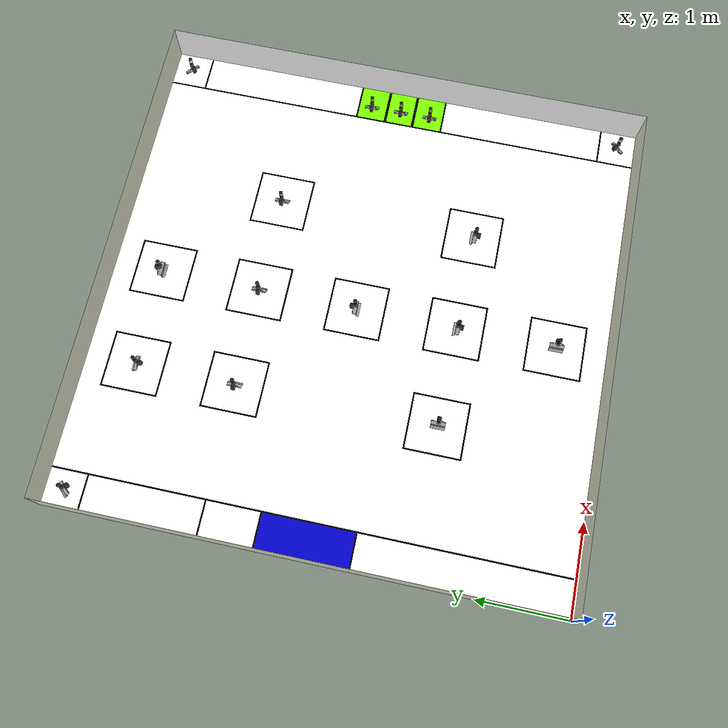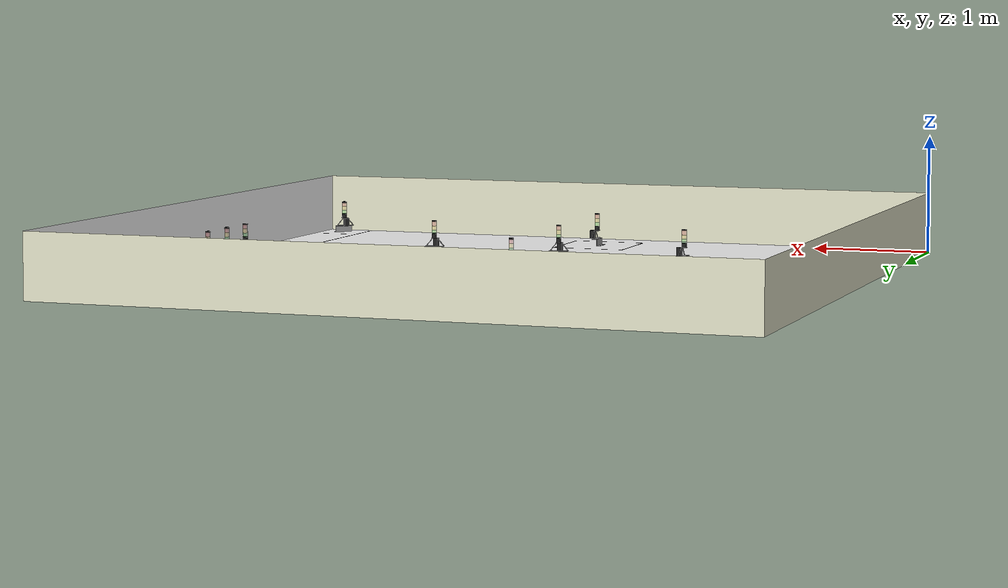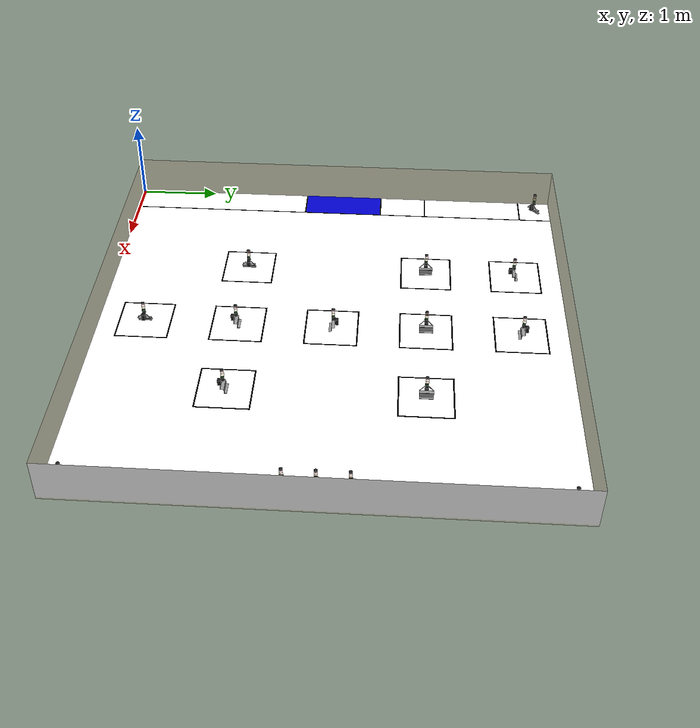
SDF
<?xml version="1.0" ?>
<sdf version="1.4">
  <model name="llsf_field">
    <static>true</static>
    <link name="field_link">
      <visual name='visual'>
	<pose>5.6 0 0 0 0 1.57</pose>
	<geometry>
	  <mesh>
	    <uri>model://llsf_field/RobotinoFeld_leer.dae</uri>
	    <scale>1.0 1.0 1.0</scale>
	  </mesh>
	</geometry>
	<cast_shadows>false</cast_shadows>
      </visual>
      <collision name="collision_ground">
	<pose>2.8 2.8 0.01 0 0 0 </pose>
        <geometry>
          <box>
            <size>5.6 5.6 0.02</size>
          </box>
        </geometry>
        <surface>
          <friction>
            <ode>
              <mu>100</mu>
              <mu2>50</mu2>
            </ode>
          </friction>
        </surface>
      </collision>
      <collision name="collision0">
        <pose>2.8 0 0.25 0 0 0 </pose>
	<geometry>
          <box>
            <size>5.6 0.02 0.5</size>
          </box>
        </geometry>
        <surface>
          <friction>
            <ode>
              <mu>100</mu>
              <mu2>50</mu2>
            </ode>
          </friction>
        </surface>
      </collision>
      <collision name="collision1">
        <pose>0 2.8 0.25 0 0 0 </pose>
	<geometry>
          <box>
            <size>0.02 5.6 0.5</size>
          </box>
        </geometry>
        <surface>
          <friction>
            <ode>
              <mu>100</mu>
              <mu2>50</mu2>
            </ode>
          </friction>
        </surface>
      </collision>
      <collision name="collision2">
        <pose>5.6 2.8 0.25 0 0 0 </pose>
	<geometry>
          <box>
            <size>0.02 5.6 0.5</size>
          </box>
        </geometry>
        <surface>
          <friction>
            <ode>
              <mu>100</mu>
              <mu2>50</mu2>
            </ode>
          </friction>
        </surface>
      </collision>
      <collision name="collision3">
        <pose>2.8 5.6 0.25 0 0 0 </pose>
	<geometry>
          <box>
            <size>5.6 0.02 0.5</size>
          </box>
        </geometry>
        <surface>
          <friction>
            <ode>
              <mu>100</mu>
              <mu2>50</mu2>
            </ode>
          </friction>
        </surface>
      </collision>
    </link>

    <!-- Machines  -->

    <include>
      <name>M1</name>
      <uri>model://machine</uri>
      <pose>3.92 1.68 0.02 0 0 -1.57</pose>
    </include>
    <include>
      <name>M2</name>
      <uri>model://machine</uri>
      <pose>3.92 3.92 0.02 0 0 3.14</pose>
    </include>
    <include>
      <name>M3</name>
      <uri>model://machine</uri>
      <pose>2.8 0.56 0.02 0 0 0</pose>
    </include>
    <include>
      <name>M4</name>
      <uri>model://machine</uri>
      <pose>2.8 1.68 0.02 0 0 -1.57</pose>
    </include>
    <include>
      <name>M5</name>
      <uri>model://machine</uri>
      <pose>2.8 2.8 0.02 0 0 1.57</pose>
    </include>
    <include>
      <name>M6</name>
      <uri>model://machine</uri>
      <pose>2.8 3.92 0.02 0 0 3.14</pose>
    </include>
    <include>
      <name>M7</name>
      <uri>model://machine</uri>
      <pose>2.8 5.04 0.02 0 0 1.57</pose>
    </include>
    <include>
      <name>M8</name>
      <uri>model://machine</uri>
      <pose>1.68 1.68 0.02 0 0 0</pose>
    </include>
    <include>
      <name>M9</name>
      <uri>model://machine</uri>
      <pose>1.68 3.92 0.02 0 0 3.14</pose>
    </include>
    <include>
      <name>M10</name>
      <uri>model://machine</uri>
      <pose>1.68 5.04 0.02 0 0 -1.57</pose>
    </include>
    <include>
      <name>D1</name>
      <uri>model://machine</uri>
      <pose>5.34 3.15 0.02 0 0 3.14</pose>
    </include>
    <include>
      <name>D2</name>
      <uri>model://machine</uri>
      <pose>5.34 2.8 0.02 0 0 3.14</pose>
    </include>
    <include>
      <name>D3</name>
      <uri>model://machine</uri>
      <pose>5.34 2.45 0.02 0 0 3.14</pose>
    </include>
    <include>
      <name>R1</name>
      <uri>model://machine</uri>
      <pose>5.4 0.2 0.02 0 0 2.356</pose>
    </include>
    <include>
      <name>R2</name>
      <uri>model://machine</uri>
      <pose>0.2 5.4 0.02 0 0 -0.785</pose>
    </include>
    <include>
      <name>TST</name>
      <uri>model://machine</uri>
      <pose>5.4 5.4 0.02 0 0 -2.356</pose>
    </include>
  </model>
</sdf>

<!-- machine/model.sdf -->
<sdf version="1.4">
  <model name="machine">

    <!-- facing in x direction -->

    <static>true</static>
    <link name="machine_link">
      <collision name="ground_plate_collision">
        <pose>-0.015 0 0.002 0 0 0 </pose>
	<geometry>
          <box>
            <size>0.03 0.16 0.004</size>
          </box>
        </geometry>
      </collision>
      <visual name="ground_plate_visual">
        <pose>-0.015 0 0.002 0 0 0 </pose>
	<cast_shadows>false</cast_shadows>
        <geometry>
	  <box>
	    <size>0.03 0.16 0.004</size>
          </box>
        </geometry>
	<material>
	  <script>
	    <uri>file://media/materials/scripts/gazebo.material</uri>
	    <name>Gazebo/Grey</name>
	  </script>
	</material>
      </visual>
      <collision name="low_plate_collision">
        <pose>0 0 0.03 0 0 0 </pose>
	<geometry>
          <box>
            <size>0.004 0.16 0.06</size>
          </box>
        </geometry>
      </collision>
      <visual name="low_plate_visual">
        <pose>0 0 0.03 0 0 0 </pose>
	<cast_shadows>false</cast_shadows>
        <geometry>
	  <box>
	    <size>0.004 0.16 0.06</size>
          </box>
        </geometry>
	<material>
	  <script>
	    <uri>file://media/materials/scripts/gazebo.material</uri>
	    <name>Gazebo/Grey</name>
	  </script>
	</material>
      </visual>
      <collision name="middle_plate_collision">
        <pose>0.02 0 0.06 0 0 0 </pose>
	<geometry>
          <box>
            <size>0.04 0.16 0.004</size>
          </box>
        </geometry>
      </collision>
      <visual name="middle_plate_visual">
        <pose>0.02 0 0.06 0 0 0 </pose>
	<cast_shadows>false</cast_shadows>
        <geometry>
	  <box>
            <size>0.04 0.16 0.004</size>
          </box>
        </geometry>
	<material>
	  <script>
	    <uri>file://media/materials/scripts/gazebo.material</uri>
	    <name>Gazebo/Grey</name>
	  </script>
	</material>
      </visual>
      <collision name="uppest_plate_collision">
        <pose>0.02 0 0.13 0 0 0 </pose>
	<geometry>
          <box>
            <size>0.04 0.04 0.004</size>
          </box>
        </geometry>
      </collision>
      <visual name="uppest_plate_visual">
        <pose>0.02 0 0.13 0 0 0 </pose>
	<cast_shadows>false</cast_shadows>
        <geometry>
	  <box>
            <size>0.04 0.04 0.004</size>
          </box>
        </geometry>
	<material>
	  <script>
	    <uri>file://media/materials/scripts/gazebo.material</uri>
	    <name>Gazebo/Grey</name>
	  </script>
	</material>
      </visual>
    <!-- only two sticks, I don't have triangles -->
      <collision name="upper_plate_left_collision">
        <pose>0.04 -0.05 0.095 0.86 0 0 </pose>
	<geometry>
          <box>
            <size>0.004 0.092 0.004</size>
          </box>
        </geometry>
      </collision>
      <visual name="upper_plate_left_visual">
        <pose>0.04 -0.05 0.095 0.86 0 0 </pose>
	<cast_shadows>false</cast_shadows>
        <geometry>
	  <box>
	    <size>0.004 0.092 0.004</size>
          </box>
        </geometry>
	<material>
	  <script>
	    <uri>file://media/materials/scripts/gazebo.material</uri>
	    <name>Gazebo/Grey</name>
	  </script>
	</material>
      </visual>
      <collision name="upper_plate_right_collision">
        <pose>0.04 0.05 0.095 -0.86 0 0 </pose>
	<geometry>
          <box>
            <size>0.004 0.092 0.004</size>
          </box>
        </geometry>
      </collision>
      <visual name="upper_plate_right_visual">
        <pose>0.04 0.05 0.095 -0.86 0 0 </pose>
	<cast_shadows>false</cast_shadows>
        <geometry>
	  <box>
	    <size>0.004 0.092 0.004</size>
          </box>
        </geometry>
	<material>
	  <script>
	    <uri>file://media/materials/scripts/gazebo.material</uri>
	    <name>Gazebo/Grey</name>
	  </script>
	</material>
      </visual>
    <!-- no cable -->
      <collision name="rfid_collision">
        <pose>0.06 0 0.095 0 0 0 </pose>
	<geometry>
          <box>
            <size>0.04 0.04 0.04</size>
          </box>
        </geometry>
      </collision>
      <visual name="rfid_visual">
        <pose>0.06 0 0.095 0 0 0 </pose>
	<cast_shadows>false</cast_shadows>
        <geometry>
	  <box>
            <size>0.04 0.04 0.07</size>
          </box>
        </geometry>
	<material>
	  <script>
            <uri>file://media/materials/scripts/gazebo.material</uri>
            <name>Gazebo/Black</name>
	  </script>
	</material>
      </visual>
      <collision name="trafficlight_collision">
        <pose>0.02 0 0.205 0 0 0 </pose>
	<geometry>
          <cylinder>
	    <radius>0.02</radius>
	    <length>0.15</length>
          </cylinder>
        </geometry>
      </collision>
      <visual name="upper_black_border">
        <pose>0.02 0 0.275 0 0 0 </pose>
	<cast_shadows>false</cast_shadows>
        <geometry>
          <cylinder>
	    <radius>0.02</radius>
	    <length>0.01</length>
          </cylinder>
        </geometry>
	<material>
	  <script>
            <uri>file://media/materials/scripts/gazebo.material</uri>
            <name>Gazebo/Black</name>
	  </script>
	</material>
      </visual>
      <visual name="red">
        <pose>0.02 0 0.253 0 0 0 </pose>
	<cast_shadows>false</cast_shadows>
        <geometry>
          <cylinder>
	    <radius>0.019</radius>
	    <length>0.034</length>
          </cylinder>
        </geometry>
	<material>
	  <ambient>0.8 0 0 0.8</ambient>
	  <diffuse>0.8 0.0 0.0 0.8</diffuse>
	  <emissive>0.0 0.0 0.0 0.0</emissive>
	</material>
	<transparency>0.9</transparency>
      </visual>
      <visual name="yellow">
        <pose>0.02 0 0.219 0 0 0 </pose>
	<cast_shadows>false</cast_shadows>
        <geometry>
          <cylinder>
	    <radius>0.019</radius>
	    <length>0.034</length>
          </cylinder>
        </geometry>
	<material>
	  <ambient>0.9 0.7 0 0.8</ambient>
	  <diffuse>0.9 0.7 0.0 0.8</diffuse>
	  <emissive>0.0 0.0 0.0 0.0</emissive>
	</material>
	<transparency>0.9</transparency>
      </visual>
      <visual name="green">
        <pose>0.02 0 0.185 0 0 0 </pose>
	<cast_shadows>false</cast_shadows>
        <geometry>
          <cylinder>
	    <radius>0.019</radius>
	    <length>0.034</length>
          </cylinder>
        </geometry>
	<material>
	  <ambient>0.0 0.8 0 0.8</ambient>
	  <diffuse>0.0 0.8 0.0 0.8</diffuse>
	  <emissive>0.0 0.0 0.0 0.0</emissive>
	</material>
	<transparency>0.9</transparency>
      </visual>
      <visual name="lower_black_border">
        <pose>0.02 0 0.149 0 0 0 </pose>
	<cast_shadows>false</cast_shadows>
        <geometry>
          <cylinder>
	    <radius>0.02</radius>
	    <length>0.038</length>
          </cylinder>
        </geometry>
	<material>
	  <script>
            <uri>file://media/materials/scripts/gazebo.material</uri>
            <name>Gazebo/Black</name>
	  </script>
	</material>
      </visual>
    </link>
  </model>
</sdf>
